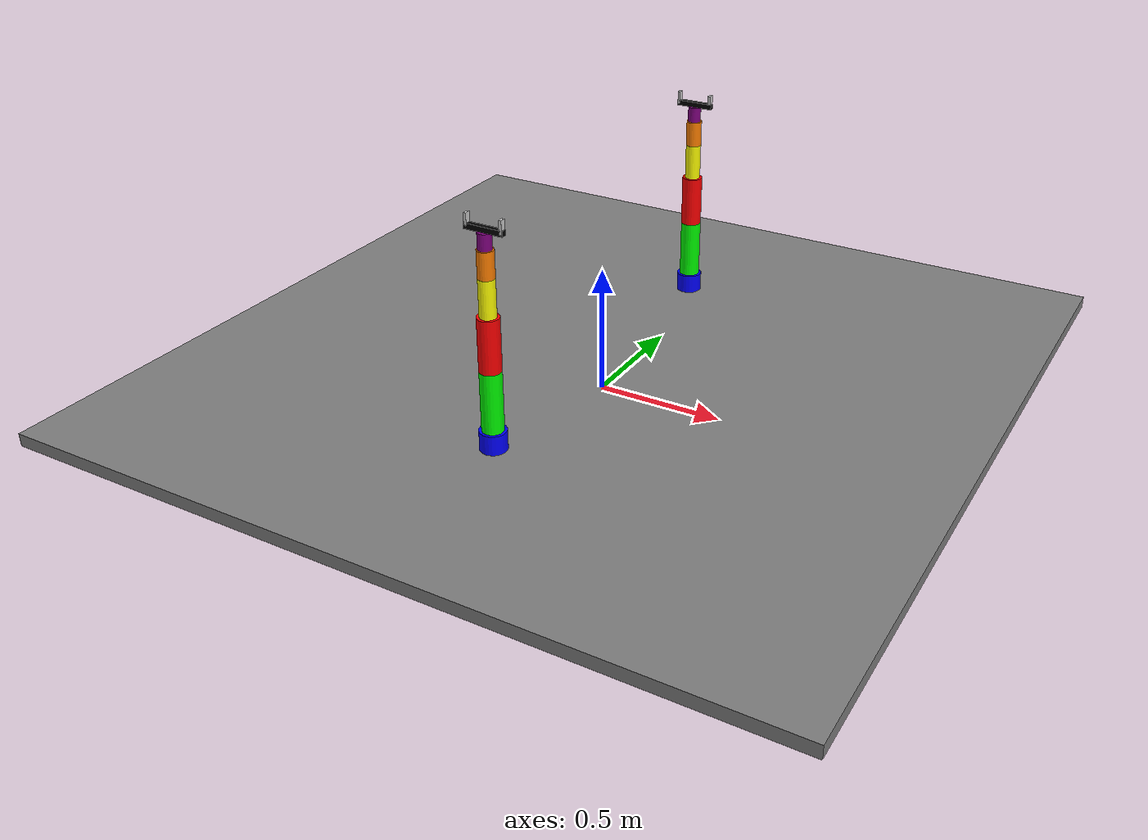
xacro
<?xml version="1.0"?>
<robot xmlns:xacro="http://www.ros.org/wiki/xacro" name="dual_arm_robot">
    <xacro:arg name="initial_positions_file" default="initial_positions.yaml" />

    <!-- Import dual_arm_robot urdf file -->
    <xacro:include filename="$(find robot_main)/src/description/robot.urdf.xacro" />

    <!-- Import control_xacro -->
    <xacro:include filename="dual_arm_robot.ros2_control.xacro" />

    <xacro:dual_arm_robot_ros2_control name="FakeSystem" initial_positions_file="$(arg initial_positions_file)"/>

</robot>

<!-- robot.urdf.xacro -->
<robot name="dual_arm_robot" xmlns:xacro="http://www.ros.org/wiki/xacro">

    <!-- ========== BASE LINK ========== -->
  <link name="base_link">
    <visual>
      <geometry><box size="3.0 3.0 0.05"/></geometry>
      <origin xyz="0 0 0.1" rpy="0 0 0"/>
      <material name="grey"><color rgba="0.5 0.5 0.5 1"/></material>
    </visual>
    <collision>
      <origin xyz="0 0 0.1" rpy="0 0 0"/>
      <geometry><box size="3.0 3.0 0.05"/></geometry>
    </collision>
  </link>

  <!-- ========== left robot ========== -->

    <link name="base_link_robot_1"></link>
    <joint name="basejoint_robot_1" type="fixed">
      <parent link="base_link"/>
      <child link="base_link_robot_1"/>
      <origin xyz="0 -0.75 0.1" rpy="0 0 0"/>
      <axis xyz="0 0 1"/>
    </joint>

  <!-- ========== JOINT 1 ========== -->
  <link name="link1_robot_1">
    <visual>
      <origin xyz="0 0 0.05" rpy="0 0 0"/>
      <geometry><cylinder length="0.1" radius="0.05"/></geometry>
      <material name="blue"><color rgba="0 0 1 1"/></material>
    </visual>
    <collision>
      <origin xyz="0 0 0.05" rpy="0 0 0"/>
      <geometry><cylinder length="0.05" radius="0.05"/></geometry>
    </collision>
    <inertial>
      <mass value="1.0"/>
      <origin xyz="0 0 0.05" rpy="0 0 0"/>
      <inertia ixx="0.01" iyy="0.01" izz="0.005" ixy="0" ixz="0" iyz="0"/>
    </inertial>
  </link>
  <joint name="joint1_robot_1" type="revolute">
    <parent link="base_link_robot_1"/>
    <child link="link1_robot_1"/>
    <origin xyz="0 0 0" rpy="0 0 0"/>
    <axis xyz="0 0 1"/>
    <limit effort="10" velocity="10" lower="-3.14" upper="3.14"/>
  </joint>

  <!-- ========== JOINT 2 ========== -->
  <link name="link2_robot_1">
    <visual>
      <origin xyz="0 0 0.105" rpy="0 0 0"/>
      <geometry><cylinder length="0.25" radius="0.04"/></geometry>
      <material name="green"><color rgba="0 1 0 1"/></material>
    </visual>
    <collision>
      <origin xyz="0 0 0.105" rpy="0 0 0"/>
      <geometry><cylinder length="0.15" radius="0.04"/></geometry>
    </collision>
    <inertial>
      <mass value="0.8"/>
      <origin xyz="0 0 0.105" rpy="0 0 0"/>
      <inertia ixx="0.008" iyy="0.008" izz="0.004" ixy="0" ixz="0" iyz="0"/>
    </inertial>
  </link>
  <joint name="joint2_robot_1" type="revolute">
    <parent link="link1_robot_1"/>
    <child link="link2_robot_1"/>
    <origin xyz="0 0 0.10" rpy="0 0 0"/>
    <axis xyz="0 1 0"/>
    <limit effort="10" velocity="1.0" lower="-1.31" upper="1.31"/>
  </joint>

  <!-- ========== JOINT 3 ========== -->
  <link name="link3_robot_1">
    <visual>
      <origin xyz="0 0 0.1" rpy="0 0 0"/>
      <geometry><cylinder length="0.2" radius="0.04"/></geometry>
      <material name="red"><color rgba="1 0 0 1"/></material>
    </visual>
    <collision>
      <origin xyz="0 0 0.1" rpy="0 0 0"/>
      <geometry><cylinder length="0.12" radius="0.04"/></geometry>
    </collision>
    <inertial>
      <mass value="0.8"/>
      <origin xyz="0 0 0.1" rpy="0 0 0"/>
      <inertia ixx="0.008" iyy="0.008" izz="0.004" ixy="0" ixz="0" iyz="0"/>
    </inertial>
  </link>
  <joint name="joint3_robot_1" type="revolute">
    <parent link="link2_robot_1"/>
    <child link="link3_robot_1"/>
    <origin xyz="0 0 0.23" rpy="0 0 0"/>
    <axis xyz="0 1 0"/>
    <limit effort="10" velocity="1.0" lower="-2.0" upper="2.0"/>
  </joint>

  <!-- ========== JOINT 4 ========== -->
  <link name="link4_robot_1">
    <visual>
      <origin xyz="0 0 0.075" rpy="0 0 0"/>
      <geometry><cylinder length="0.15" radius="0.03"/></geometry>
      <material name="yellow"><color rgba="1 1 0 1"/></material>
    </visual>
    <collision>
      <origin xyz="0 0 0.075" rpy="0 0 0"/>
      <geometry><cylinder length="0.08" radius="0.03"/></geometry>
    </collision>
    <inertial>
      <mass value="0.5"/>
      <origin xyz="0 0 0.075" rpy="0 0 0"/>
      <inertia ixx="0.005" iyy="0.005" izz="0.003" ixy="0" ixz="0" iyz="0"/>
    </inertial>
  </link>
  <joint name="joint4_robot_1" type="revolute">
    <parent link="link3_robot_1"/>
    <child link="link4_robot_1"/>
    <origin xyz="0 0 0.19" rpy="0 0 0"/>
    <axis xyz="0 0 1"/>
    <limit effort="10" velocity="1.0" lower="-3.14" upper="3.14"/>
  </joint>

  <!-- ========== JOINT 5 ========== -->
  <link name="link5_robot_1">
    <visual>
      <origin xyz="0 0 0.05" rpy="0 0 0"/>
      <geometry><cylinder length="0.1" radius="0.03"/></geometry>
      <material name="orange"><color rgba="1 0.5 0 1"/></material>
    </visual>
    <collision>
      <origin xyz="0 0 0.05" rpy="0 0 0"/>
      <geometry><cylinder length="0.05" radius="0.03"/></geometry>
    </collision>
    <inertial>
      <mass value="0.3"/>
      <origin xyz="0 0 0.05" rpy="0 0 0"/>
      <inertia ixx="0.003" iyy="0.003" izz="0.002" ixy="0" ixz="0" iyz="0"/>
    </inertial>
  </link>
  <joint name="joint5_robot_1" type="revolute">
    <parent link="link4_robot_1"/>
    <child link="link5_robot_1"/>
    <origin xyz="0 0 0.15" rpy="0 0 0"/>
    <axis xyz="0 1 0"/>
    <limit effort="10" velocity="1.0" lower="-1.57" upper="1.57"/>
  </joint>

  <!-- ========== JOINT 6 ========== -->
  <link name="link6_robot_1">
    <visual>
      <origin xyz="0 0 0.05" rpy="0 0 0"/>
      <geometry><cylinder length="0.1" radius="0.025"/></geometry>
      <material name="purple"><color rgba="0.5 0 0.5 1"/></material>
    </visual>
    <collision>
      <origin xyz="0 0 0.05" rpy="0 0 0"/>
      <geometry><cylinder length="0.1" radius="0.025"/></geometry>
    </collision>
    <inertial>
      <mass value="0.2"/>
      <origin xyz="0 0 0.05" rpy="0 0 0"/>
      <inertia ixx="0.002" iyy="0.002" izz="0.001" ixy="0" ixz="0" iyz="0"/>
    </inertial>
  </link>
  <joint name="joint6_robot_1" type="revolute">
    <parent link="link5_robot_1"/>
    <child link="link6_robot_1"/>
    <origin xyz="0 0 0.06" rpy="0 0 0"/>
    <axis xyz="0 0 1"/>
    <limit effort="10" velocity="1.0" lower="-3.14" upper="3.14"/>
  </joint>

  <!-- ========== GRIPPER BASE ========== -->
  <link name="gripper_base_robot_1">
    <visual>
      <geometry><box size="0.15 0.02 0.02"/></geometry>
      <material name="black"><color rgba="0 0 0 1"/></material>
    </visual>
    <collision>
      <geometry><box size="0.15 0.02 0.02"/></geometry>
    </collision>
    <inertial>
      <mass value="0.3"/>
      <origin xyz="0 0 0.01" rpy="0 0 0"/>
      <inertia ixx="0.001" iyy="0.001" izz="0.001" ixy="0" ixz="0" iyz="0"/>
    </inertial>
  </link>
  <joint name="ee_fixed_robot_1" type="fixed">
    <parent link="link6_robot_1"/>
    <child link="gripper_base_robot_1"/>
    <origin xyz="0 0 0.11" rpy="0 0 0"/>
  </joint>

  <!-- ========== GRIPPER FINGERS ========== -->
  <link name="left_finger_robot_1">
    <visual>
      <geometry><box size="0.01 0.05 0.02"/></geometry>
      <origin xyz="0 0 0" rpy="-1.5708 0 0"/>
      <material name="silver"><color rgba="0.8 0.8 0.8 1"/></material>
    </visual>
    <collision>
      <geometry><box size="0.01 0.05 0.02"/></geometry>
      <origin xyz="0 0 0" rpy="-1.5708 0 0"/>
    </collision>
    <inertial>
      <mass value="0.05"/>
      <origin xyz="0.005 0 0" rpy="0 0 0"/>
      <inertia ixx="0.0001" iyy="0.0001" izz="0.0001" ixy="0" ixz="0" iyz="0"/>
    </inertial>
  </link>

  <joint name="left_gripper_joint_robot_1" type="prismatic">
    <parent link="gripper_base_robot_1"/>
    <child link="left_finger_robot_1"/>
    <origin xyz="-0.067 0 0.02" rpy="0 0 0"/>
    <axis xyz="1 0 0"/>
    <limit effort="10" velocity="1.0" lower="0.0" upper="0.06"/>
  </joint>

  <link name="right_finger_robot_1">
     <visual>
      <geometry><box size="0.01 0.05 0.02"/></geometry>
      <origin xyz="0 0 0" rpy="-1.5708 0 0"/>
      <material name="silver"/>
    </visual>
    <collision>
      <geometry><box size="0.01 0.05 0.02"/></geometry>
      <origin xyz="0 0 0" rpy="-1.5708 0 0"/>
    </collision>
    <inertial>
      <mass value="0.05"/>
      <origin xyz="0.005 0 0" rpy="0 0 0"/>
      <inertia ixx="0.0001" iyy="0.0001" izz="0.0001" ixy="0" ixz="0" iyz="0"/>
    </inertial>
  </link>

  <joint name="right_gripper_joint_robot_1" type="prismatic">
    <parent link="gripper_base_robot_1"/>
    <child link="right_finger_robot_1"/>
    <origin xyz="0.067 0 0.02" rpy="0 0 0"/>
    <axis xyz="-1 0 0"/>
    <mimic joint="left_gripper_joint_robot_1" multiplier="1.0" offset="0.0"/>
    <limit effort="10" velocity="1.0" lower="0.0" upper="0.06"/>
    <mimic joint="left_gripper_joint_robot_1" multiplier="1" offset="0"/>
  </joint>

  <!-- ========== right robot ========== -->

    <link name="base_link_robot_2"></link>
    <joint name="basejoint_robot_2" type="fixed">
      <parent link="base_link"/>
      <child link="base_link_robot_2"/>
      <origin xyz="0 0.75 0.1" rpy="0 0 0"/>
      <axis xyz="0 0 1"/>
    </joint>

  <!-- ========== JOINT 1 ========== -->
  <link name="link1_robot_2">
    <visual>
      <origin xyz="0 0 0.05" rpy="0 0 0"/>
      <geometry><cylinder length="0.1" radius="0.05"/></geometry>
      <material name="blue"><color rgba="0 0 1 1"/></material>
    </visual>
    <collision>
      <origin xyz="0 0 0.05" rpy="0 0 0"/>
      <geometry><cylinder length="0.05" radius="0.05"/></geometry>
    </collision>
    <inertial>
      <mass value="1.0"/>
      <origin xyz="0 0 0.05" rpy="0 0 0"/>
      <inertia ixx="0.01" iyy="0.01" izz="0.005" ixy="0" ixz="0" iyz="0"/>
    </inertial>
  </link>
  <joint name="joint1_robot_2" type="revolute">
    <parent link="base_link_robot_2"/>
    <child link="link1_robot_2"/>
    <origin xyz="0 0 0" rpy="0 0 0"/>
    <axis xyz="0 0 1"/>
    <limit effort="10" velocity="1.0" lower="-3.14" upper="3.14"/>
  </joint>

  <!-- ========== JOINT 2 ========== -->
  <link name="link2_robot_2">
    <visual>
      <origin xyz="0 0 0.105" rpy="0 0 0"/>
      <geometry><cylinder length="0.25" radius="0.04"/></geometry>
      <material name="green"><color rgba="0 1 0 1"/></material>
    </visual>
    <collision>
      <origin xyz="0 0 0.105" rpy="0 0 0"/>
      <geometry><cylinder length="0.15" radius="0.04"/></geometry>
    </collision>
    <inertial>
      <mass value="0.8"/>
      <origin xyz="0 0 0.105" rpy="0 0 0"/>
      <inertia ixx="0.008" iyy="0.008" izz="0.004" ixy="0" ixz="0" iyz="0"/>
    </inertial>
  </link>
  <joint name="joint2_robot_2" type="revolute">
    <parent link="link1_robot_2"/>
    <child link="link2_robot_2"/>
    <origin xyz="0 0 0.10" rpy="0 0 0"/>
    <axis xyz="0 1 0"/>
    <limit effort="10" velocity="1.0" lower="-1.31" upper="1.31"/>
  </joint>

  <!-- ========== JOINT 3 ========== -->
  <link name="link3_robot_2">
    <visual>
      <origin xyz="0 0 0.1" rpy="0 0 0"/>
      <geometry><cylinder length="0.2" radius="0.04"/></geometry>
      <material name="red"><color rgba="1 0 0 1"/></material>
    </visual>
    <collision>
      <origin xyz="0 0 0.1" rpy="0 0 0"/>
      <geometry><cylinder length="0.12" radius="0.04"/></geometry>
    </collision>
    <inertial>
      <mass value="0.8"/>
      <origin xyz="0 0 0.1" rpy="0 0 0"/>
      <inertia ixx="0.008" iyy="0.008" izz="0.004" ixy="0" ixz="0" iyz="0"/>
    </inertial>
  </link>
  <joint name="joint3_robot_2" type="revolute">
    <parent link="link2_robot_2"/>
    <child link="link3_robot_2"/>
    <origin xyz="0 0 0.23" rpy="0 0 0"/>
    <axis xyz="0 1 0"/>
    <limit effort="10" velocity="1.0" lower="-2.0" upper="2.0"/>
  </joint>

  <!-- ========== JOINT 4 ========== -->
  <link name="link4_robot_2">
    <visual>
      <origin xyz="0 0 0.075" rpy="0 0 0"/>
      <geometry><cylinder length="0.15" radius="0.03"/></geometry>
      <material name="yellow"><color rgba="1 1 0 1"/></material>
    </visual>
    <collision>
      <origin xyz="0 0 0.075" rpy="0 0 0"/>
      <geometry><cylinder length="0.08" radius="0.03"/></geometry>
    </collision>
    <inertial>
      <mass value="0.5"/>
      <origin xyz="0 0 0.075" rpy="0 0 0"/>
      <inertia ixx="0.005" iyy="0.005" izz="0.003" ixy="0" ixz="0" iyz="0"/>
    </inertial>
  </link>
  <joint name="joint4_robot_2" type="revolute">
    <parent link="link3_robot_2"/>
    <child link="link4_robot_2"/>
    <origin xyz="0 0 0.19" rpy="0 0 0"/>
    <!-- PATCH: was "0 1 0" (see joint4_robot_1 for rationale) -->
    <axis xyz="0 0 1"/>
    <limit effort="10" velocity="1.0" lower="-2.0" upper="2.0"/>
  </joint>

  <!-- ========== JOINT 5 ========== -->
  <link name="link5_robot_2">
    <visual>
      <origin xyz="0 0 0.05" rpy="0 0 0"/>
      <geometry><cylinder length="0.1" radius="0.03"/></geometry>
      <material name="orange"><color rgba="1 0.5 0 1"/></material>
    </visual>
    <collision>
      <origin xyz="0 0 0.05" rpy="0 0 0"/>
      <geometry><cylinder length="0.05" radius="0.03"/></geometry>
    </collision>
    <inertial>
      <mass value="0.3"/>
      <origin xyz="0 0 0.05" rpy="0 0 0"/>
      <inertia ixx="0.003" iyy="0.003" izz="0.002" ixy="0" ixz="0" iyz="0"/>
    </inertial>
  </link>
  <joint name="joint5_robot_2" type="revolute">
    <parent link="link4_robot_2"/>
    <child link="link5_robot_2"/>
    <origin xyz="0 0 0.15" rpy="0 0 0"/>
    <axis xyz="0 1 0"/>
    <limit effort="10" velocity="1.0" lower="-1.57" upper="1.57"/>
  </joint>

  <!-- ========== JOINT 6 ========== -->
  <link name="link6_robot_2">
    <visual>
      <origin xyz="0 0 0.05" rpy="0 0 0"/>
      <geometry><cylinder length="0.1" radius="0.025"/></geometry>
      <material name="purple"><color rgba="0.5 0 0.5 1"/></material>
    </visual>
    <collision>
      <origin xyz="0 0 0.05" rpy="0 0 0"/>
      <geometry><cylinder length="0.1" radius="0.025"/></geometry>
    </collision>
    <inertial>
      <mass value="0.2"/>
      <origin xyz="0 0 0.05" rpy="0 0 0"/>
      <inertia ixx="0.002" iyy="0.002" izz="0.001" ixy="0" ixz="0" iyz="0"/>
    </inertial>
  </link>
  <joint name="joint6_robot_2" type="revolute">
    <parent link="link5_robot_2"/>
    <child link="link6_robot_2"/>
    <origin xyz="0 0 0.06" rpy="0 0 0"/>
    <axis xyz="0 0 1"/>
    <limit effort="10" velocity="1.0" lower="-3.14" upper="3.14"/>
  </joint>

  <!-- ========== GRIPPER BASE ========== -->
  <link name="gripper_base_robot_2">
    <visual>
        <geometry><box size="0.15 0.02 0.02"/></geometry>
        <material name="black"><color rgba="0 0 0 1"/></material>
      </visual>
      <collision>
        <geometry><box size="0.15 0.02 0.02"/></geometry>
      </collision>
      <inertial>
        <mass value="0.3"/>
        <origin xyz="0 0 0.01" rpy="0 0 0"/>
        <inertia ixx="0.001" iyy="0.001" izz="0.001" ixy="0" ixz="0" iyz="0"/>
      </inertial>
    </link>
  <joint name="ee_fixed_robot_2" type="fixed">
    <parent link="link6_robot_2"/>
      <child link="gripper_base_robot_2"/>
      <origin xyz="0 0 0.11" rpy="0 0 0"/>
  </joint>

  <!-- ========== GRIPPER FINGERS ========== -->
  <link name="left_finger_robot_2">
    <visual>
      <geometry><box size="0.01 0.05 0.02"/></geometry>
      <origin xyz="0 0 0" rpy="-1.5708 0 0"/>
      <material name="silver"><color rgba="0.8 0.8 0.8 1"/></material>
    </visual>
    <collision>
      <geometry><box size="0.01 0.05 0.02"/></geometry>
      <origin xyz="0 0 0" rpy="-1.5708 0 0"/>
    </collision>
    <inertial>
      <mass value="0.05"/>
      <origin xyz="0.005 0 0" rpy="0 0 0"/>
      <inertia ixx="0.0001" iyy="0.0001" izz="0.0001" ixy="0" ixz="0" iyz="0"/>
    </inertial>
  </link>

  <joint name="left_gripper_joint_robot_2" type="prismatic">
    <parent link="gripper_base_robot_2"/>
    <child link="left_finger_robot_2"/>
    <origin xyz="-0.067 0 0.02" rpy="0 0 0"/>
    <axis xyz="1 0 0"/>
    <limit effort="10" velocity="1.0" lower="0.0" upper="0.06"/>
  </joint>

  <link name="right_finger_robot_2">
    <visual>
      <geometry><box size="0.01 0.05 0.02"/></geometry>
      <origin xyz="0 0 0" rpy="-1.5708 0 0"/>
      <material name="silver"/>
    </visual>
    <collision>
      <geometry><box size="0.01 0.05 0.02"/></geometry>
      <origin xyz="0 0 0" rpy="-1.5708 0 0"/>
    </collision>
    <inertial>
      <mass value="0.05"/>
      <origin xyz="0.005 0 0" rpy="0 0 0"/>
      <inertia ixx="0.0001" iyy="0.0001" izz="0.0001" ixy="0" ixz="0" iyz="0"/>
    </inertial>
  </link>

  <joint name="right_gripper_joint_robot_2" type="prismatic">
    <parent link="gripper_base_robot_2"/>
    <child link="right_finger_robot_2"/>
    <origin xyz="0.067 0 0.02" rpy="0 0 0"/>
    <axis xyz="-1 0 0"/>
    <mimic joint="left_gripper_joint_robot_2" multiplier="1.0" offset="0.0"/>
    <limit effort="10" velocity="1.0" lower="0.0" upper="0.06"/>
    <mimic joint="left_gripper_joint_robot_2" multiplier="1" offset="0"/>
  </joint>

</robot>
